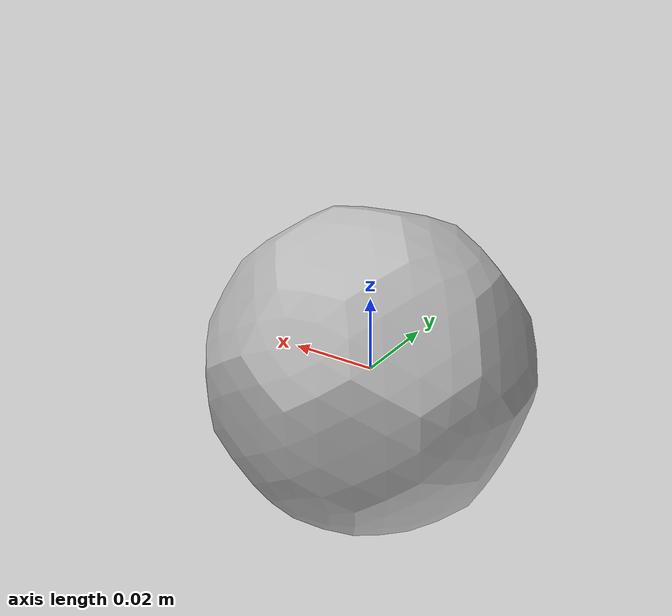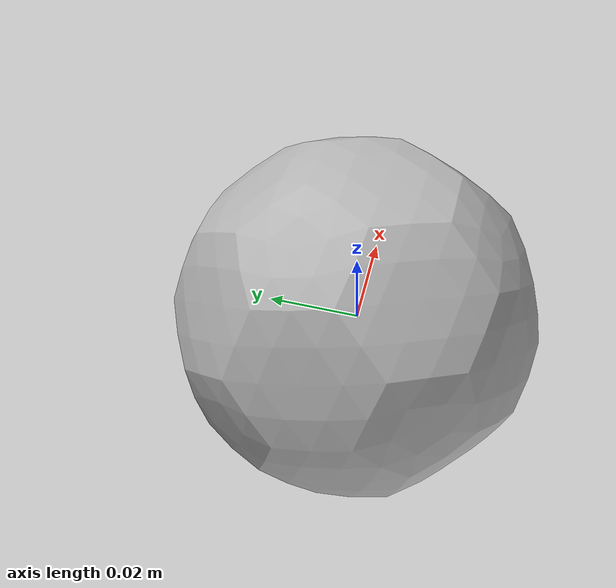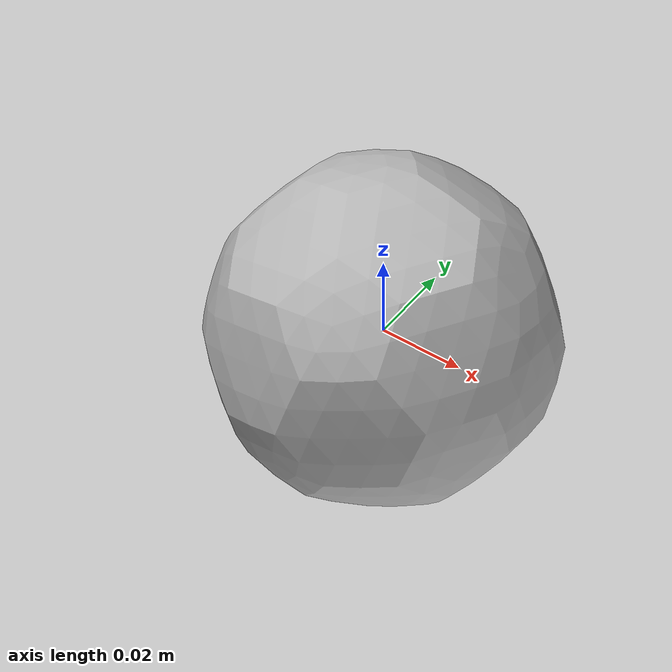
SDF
<?xml version="1.0" ?>
<sdf version="1.5">
    <model name="soccer_ball">
        <static>false</static>
        <link name="soccer_ball_link">
            <pose>0 0 0 0 0 0</pose>
            <inertial>
                <mass>0.026</mass>
                <!-- inertia based on solid sphere 2/5 mr^2 -->
                <inertia>
                    <ixx>1.664e-5</ixx>
                    <iyy>1.664e-5</iyy>
                    <izz>1.664e-5</izz>
                    <ixy>0</ixy>
                    <ixz>0</ixz>
                    <iyz>0</iyz>
                </inertia>
            </inertial>
            <collision name="collision">
                <geometry>
                    <sphere>
                        <radius>0.04</radius>
                    </sphere>
                </geometry>
            </collision>
            <visual name="visual">
                <geometry>
                    <mesh>
                        <scale>0.04 0.04 0.04</scale>
                        <uri>https://fuel.gazebosim.org/1.0/openrobotics/models/robocup%203d%20simulation%20ball/3/files/meshes/ball.dae</uri>
                    </mesh>
                </geometry>
            </visual>
        </link>
    </model>
</sdf>
